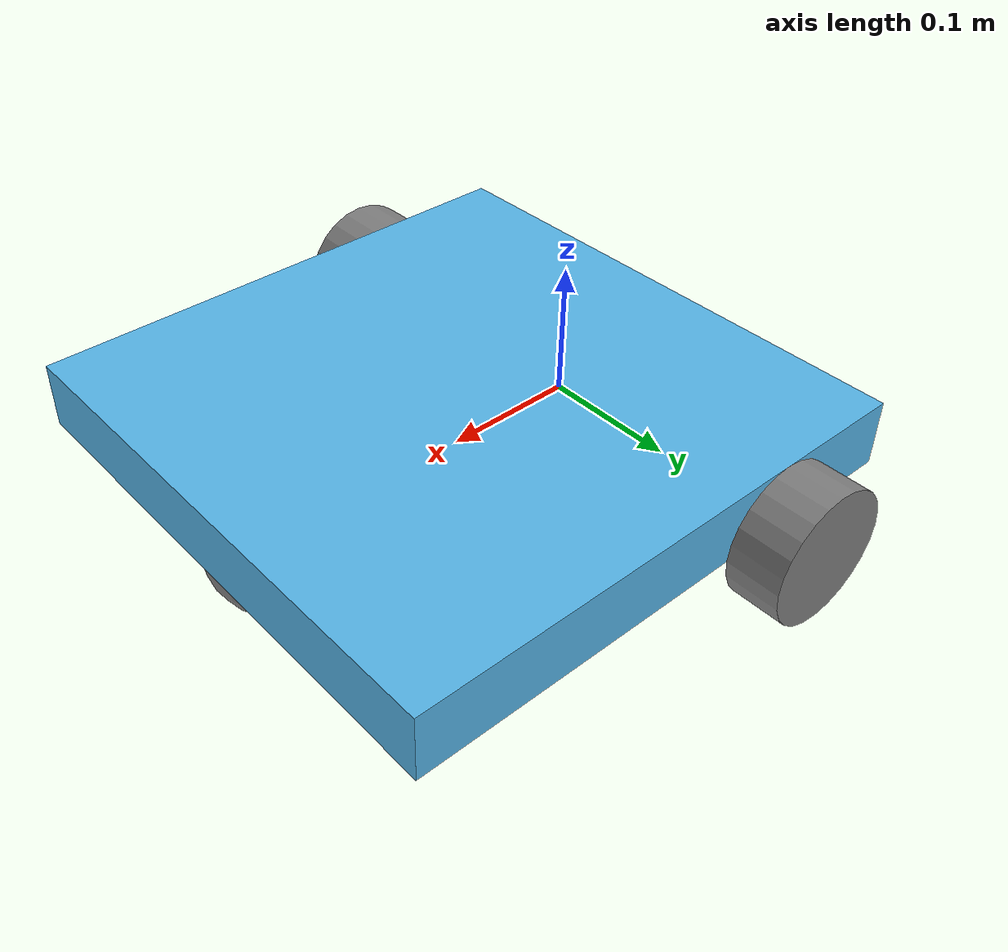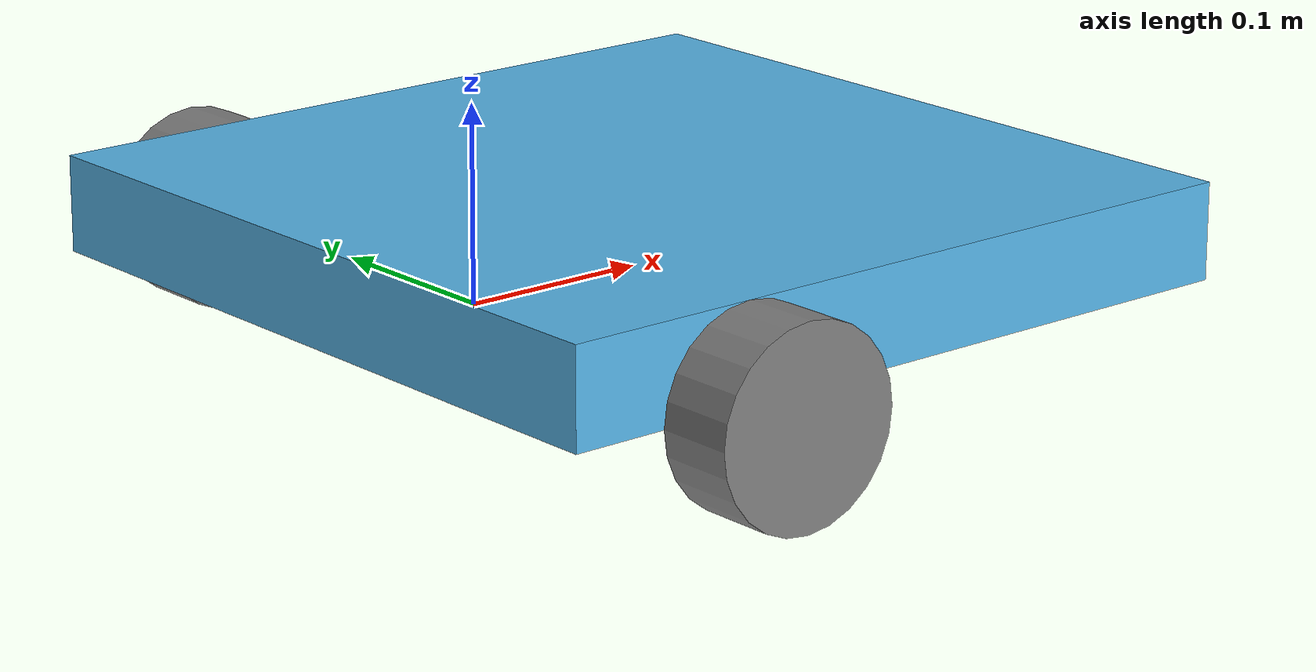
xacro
<?xml version='1.0'?>
<robot xmlns:xacro="http://www.ros.org/wiki/xacro" name="robot_car_seb">

    <!-- PROPIEDADES -->
    <xacro:property name="blx" value="${4/10}" />
    <xacro:property name="bly" value="${4/10}" />
    <xacro:property name="blz" value="${0.5/10}" />

    <xacro:property name="m" value="1" />

    <xacro:property name="olx" value="${1/10}" />
    <xacro:property name="oly" value="${(2 + 0.4/2)/10}" />
    <xacro:property name="olz" value="${0/10}" />

    <xacro:property name="crad" value="${(1/2)/10}" />
    <xacro:property name="lrad" value="${0.4/10}" />

    <xacro:property name="srad" value="${(1/2)/10}" />
    <xacro:property name="slx" value="${blx - srad}" />

    <!-- MACROS / FUNCIONES -->
    <xacro:macro name="wheel_macro" params="p_name p_radius p_length">
        <link name="${p_name}">
            <visual>
                <!-- box geometry -->
                <geometry>
                    <cylinder radius="${p_radius}" length="${p_length}" />
                </geometry>
                <origin xyz="0 0 0" rpy="${-pi/2} 0 0" />

                <material name="grey">
                    <color rgba="0.5 0.5 0.5 1.0" />
                </material>
            </visual>

            <inertial>
                <mass value="${m}" />
                <origin xyz="0 0 0" rpy="0 0 0" />
                <inertia ixx="${1/12*m*(p_length*p_length + 3*p_radius*p_radius)}" ixy="0" ixz="0"
                    iyy="${1/12*m*(p_length*p_length + 3*p_radius*p_radius)}" iyz="0"
                    izz="${1/2*m*p_radius*p_radius}" />
            </inertial>

            <collision>
                <!-- box geometry -->
                <geometry>
                    <cylinder radius="${p_radius}" length="${p_length}" />
                </geometry>
                <origin xyz="0 0 0" rpy="${-pi/2} 0 0" />
            </collision>
        </link>
    </xacro:macro>

    <!-- INICIO ROBOT -->
    <link name="base_link">
    </link>

    <joint name="base_chassis_joint" type="fixed">
        <parent link="base_link" />
        <child link="chassis_link" />
        <!--Crea offsets the child con respecto a parent -->
        <origin xyz="${-olx} 0 ${-olz}" rpy="0 0 0" />
    </joint>

    <link name="chassis_link">
        <visual>
            <!-- box geometry -->
            <geometry>
                <box size="${blx} ${bly} ${blz}" />
            </geometry>
            <!-- Esto mueve la caja desde el centro, no el origen con respecto a la caja-->
            <origin xyz="${blx/2} 0 ${blz/2}" rpy="0 0 0" />
        </visual>

        <inertial>
            <mass value="${m}" />
            <origin xyz="0 0 0" rpy="0 0 0" />
            <inertia ixx="${1/12*m*(blz*blz + bly*bly)}" ixy="0" ixz="0"
                iyy="${1/12*m*(blx*blx + blz*blz)}" iyz="0" izz="${1/12*m*(bly*bly + blx*blx)}" />
        </inertial>

        <collision>
            <!-- box geometry -->
            <geometry>
                <box size="${blx} ${bly} ${blz}" />
            </geometry>
            <origin xyz="${blx/2} 0 ${-blz/2}" rpy="0 0 0" />
        </collision>
    </link>
    <xacro:wheel_macro p_name="rwheel_link"
        p_radius="${crad}"
        p_length="${lrad}" />

    <joint name="chassis_rwheel_joint" type="continuous">
        <parent link="chassis_link" />
        <child link="rwheel_link" />
        <origin xyz="${olx} ${oly} ${olz}" rpy="0 0 0" />
        <axis xyz="0 1 0" />
        <limit effort="1" lower="0" upper="${2*pi}" velocity="1" />
        <dynamics damping="1" friction="1" />
    </joint>

    <xacro:wheel_macro p_name="lwheel_link"
        p_radius="${crad}"
        p_length="${lrad}" />

    <joint name="chassis_lwheel_joint" type="continuous">
        <parent link="chassis_link" />
        <child link="lwheel_link" />
        <origin xyz="${olx} ${-oly} ${olz}" rpy="0 0 0" />
        <axis xyz="0 1 0" />
        <limit effort="1" lower="0" upper="${2*pi}" velocity="1" />
        <dynamics damping="1" friction="1" />
    </joint>

    <link name="sphere_link">
        <visual>
            <!-- Sphere-->
            <geometry>
                <sphere radius="${srad}" />
            </geometry>
            <origin xyz="0 0 0" rpy="0 0 0" />
            <material name="gray">
                <color rgba="0.5 0.5 0.5 1" />
            </material>
        </visual>

        <inertial>
            <mass value="${m}" />
            <origin xyz="0 0 0" rpy="0 0 0" />
            <inertia ixx="${m*2/5*srad*srad}" ixy="0" ixz="0"
                iyy="${m*2/5*srad*srad}" iyz="0" izz="${m*2/5*srad*srad}" />
        </inertial>

        <collision>
            <!-- Sphere-->
            <geometry>
                <sphere radius="${srad}" />
            </geometry>
            <origin xyz="0 0 0" rpy="0 0 0" />

        </collision>
    </link>

    <joint name="chassis_sphere_joint" type="fixed">
        <parent link="chassis_link" />
        <child link="sphere_link" />
        <origin xyz="${slx} 0 0" rpy="0 0 0" />
    </joint>

</robot>
